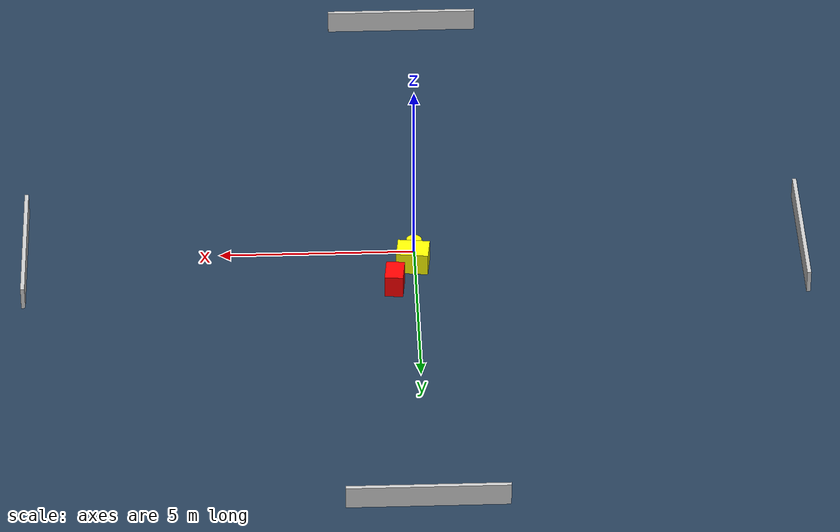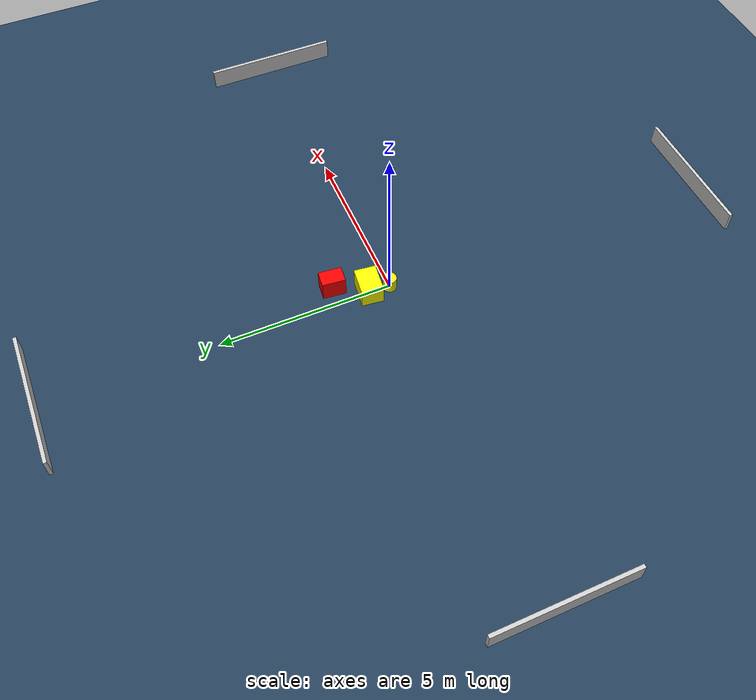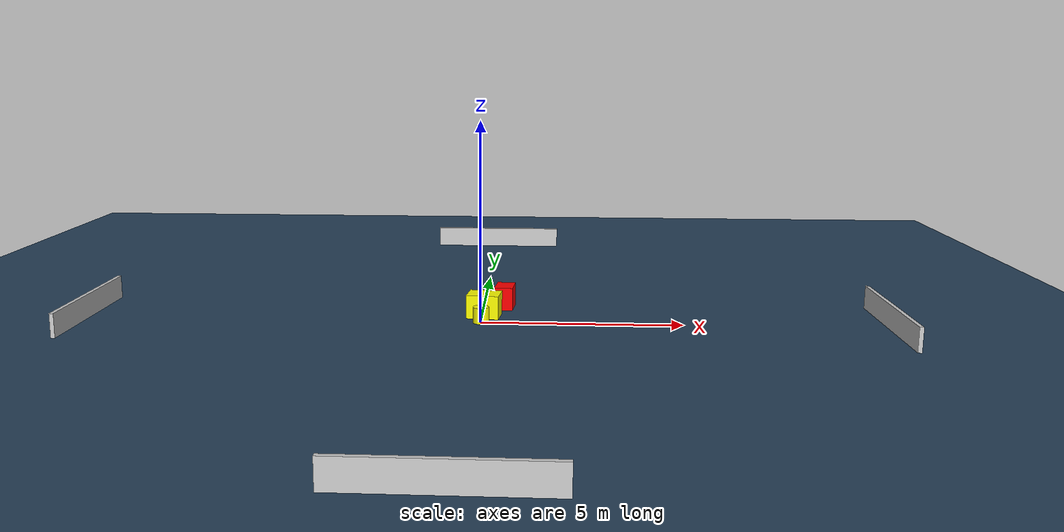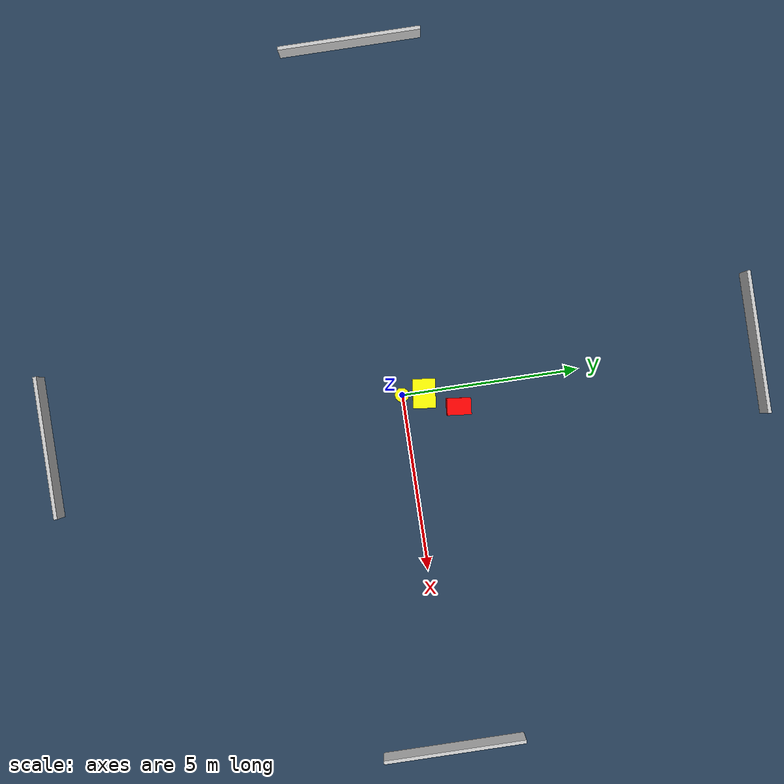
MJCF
<?xml version="1.0" ?>
<mujoco model="generated_environment">
  <option timestep="0.01" integrator="RK4" cone="elliptic"/>
  <default>
    <geom density="1"/>
  </default>
  <asset>
    <texture builtin="gradient" height="3072" name="skybox" rgb1="0.3 0.5 0.7" rgb2="0 0 0" type="skybox" width="512"/>
    <texture builtin="checker" height="300" name="groundplane" rgb1="0.2 0.3 0.4" rgb2="0.1 0.2 0.3" type="2d" width="300"/>
    <material name="groundplane" reflectance="0.2" texrepeat="5 5" texture="groundplane"/>
  </asset>
  <worldbody>
    <light dir="0 0 -1" directional="true" pos="0 0 1.5"/>
    <geom condim="3" friction="0.5 0.005 0.001" material="groundplane" name="floor" pos="0 0 0" size="0 0 0.05" type="plane"/>
    <body name="walls">
      <geom name="wall_1" condim="4" pos="-10.0 0.0 0.3" rgba="0.800000011920929 0.800000011920929 0.800000011920929 1.0" size="0.05 2.0 0.3" type="box"/>
      <geom name="wall_2" condim="4" pos="10.0 0.0 0.3" rgba="0.800000011920929 0.800000011920929 0.800000011920929 1.0" size="0.05 2.0 0.3" type="box"/>
      <geom name="wall_3" condim="4" pos="0.0 -10.0 0.3" rgba="0.800000011920929 0.800000011920929 0.800000011920929 1.0" size="2.0 0.05 0.3" type="box"/>
      <geom name="wall_4" condim="4" pos="0.0 10.0 0.3" rgba="0.800000011920929 0.800000011920929 0.800000011920929 1.0" size="2.0 0.05 0.3" type="box"/>
    </body>
    <body name="robot">
      <joint name="joint_x" type="slide" pos="0 0 0" axis="1 0 0"/>
      <joint name="joint_y" type="slide" pos="0 0 0" axis="0 1 0"/>
      <geom name="robot" type="cylinder" pos="0.0 0.0 0.2" size="0.2 0.2 0.0" mass="5.0" friction="1.0 0.005 0.0001" condim="4" rgba="1.0 1.0 0.0 1.0"/>
    </body>
    <body name="obstacle_1_movable">
      <geom name="obstacle_1_movable" condim="4" pos="0.048273574811916166 0.612941126186928 0.3" euler="0 0 353.4324609452975" friction="0.0 0.005 0.001" rgba="1.0 1.0 0.0 1.0" size="0.4093470874040284 0.3145205874849732 0.3" type="box" mass="0.1"/>
      <joint type="free"/>
    </body>
    <body name="obstacle_2_static">
      <geom name="obstacle_2_static" condim="4" pos="0.5444355541045723 1.5180257803150816 0.3" euler="0 0 84.23787488326629" friction="0.0 0.005 0.001" rgba="1.0 0.0 0.0 1.0" size="0.335179560516829 0.23607461246733685 0.3" type="box"/>
    </body>
  </worldbody>
  <actuator>
    <motor name="actuator_x" joint="joint_x" gear="1" ctrlrange="-1 1"/>
    <motor name="actuator_y" joint="joint_y" gear="1" ctrlrange="-1 1"/>
  </actuator>
</mujoco>
